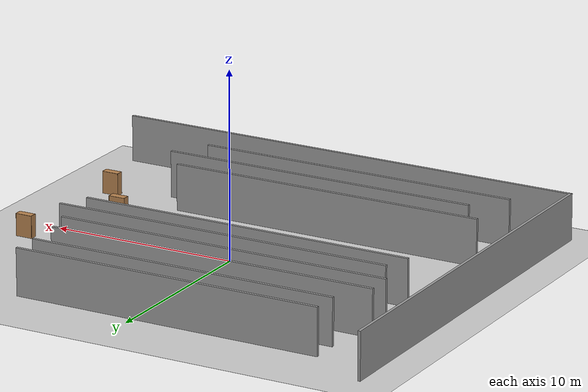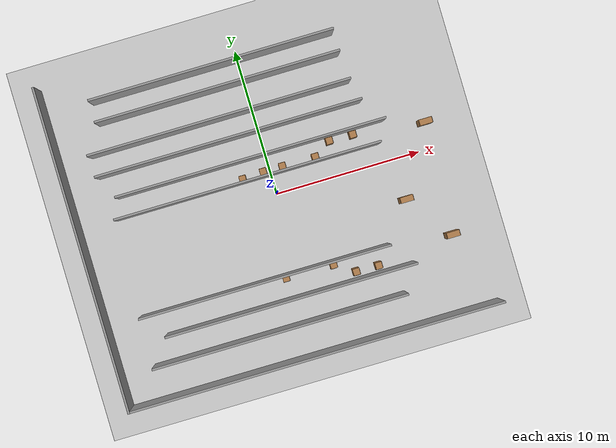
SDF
<sdf version="1.6">
 <world name="default">
  <model name="ground_plane">
   <static>1</static>
   <link name="link">
    <collision name="collision">
     <geometry><plane><normal>0 0 1</normal><size>100 100</size></plane></geometry>
     <surface><friction><ode><mu>100</mu><mu2>50</mu2></ode></friction></surface>
    </collision>
    <visual name="visual">
     <cast_shadows>0</cast_shadows>
     <geometry><plane><normal>0 0 1</normal><size>100 100</size></plane></geometry>
     <material>
      <script><uri>file://media/materials/scripts/gazebo.material</uri><name>Gazebo/Grey</name></script>
     </material>
    </visual>
   </link>
  </model>
  <model name="room19">
   <pose>-0.568895 0.02138 0 0 -0 0</pose>
   <link name="Wall_11">
    <collision name="Wall_11_Collision">
     <geometry><box><size>18.25 0.15 2.5</size></box></geometry>
     <pose>0 0 1.25 0 -0 0</pose>
    </collision>
    <visual name="Wall_11_Visual">
     <pose>0 0 1.25 0 -0 0</pose>
     <geometry><box><size>18.25 0.15 2.5</size></box></geometry>
     <material>
      <script><uri>file://media/materials/scripts/gazebo.material</uri><name>Gazebo/Grey</name></script>
      <ambient>1 1 1 1</ambient>
     </material>
     <meta><layer>0</layer></meta>
    </visual>
    <pose>-1.4753 4.35815 0 0 -0 0</pose>
   </link>
   <link name="Wall_13">
    <collision name="Wall_13_Collision">
     <geometry><box><size>18.5 0.15 2.5</size></box></geometry>
     <pose>0 0 1.25 0 -0 0</pose>
    </collision>
    <visual name="Wall_13_Visual">
     <pose>0 0 1.25 0 -0 0</pose>
     <geometry><box><size>18.5 0.15 2.5</size></box></geometry>
     <material>
      <script><uri>file://media/materials/scripts/gazebo.material</uri><name>Gazebo/Grey</name></script>
      <ambient>1 1 1 1</ambient>
     </material>
     <meta><layer>0</layer></meta>
    </visual>
    <pose>-0.450999 2.71825 0 0 -0 0</pose>
   </link>
   <link name="Wall_15">
    <collision name="Wall_15_Collision">
     <geometry><box><size>18.25 0.15 2.5</size></box></geometry>
     <pose>0 0 1.25 0 -0 0</pose>
    </collision>
    <visual name="Wall_15_Visual">
     <pose>0 0 1.25 0 -0 0</pose>
     <geometry><box><size>18.25 0.15 2.5</size></box></geometry>
     <material>
      <script><uri>file://media/materials/scripts/gazebo.material</uri><name>Gazebo/Grey</name></script>
      <ambient>1 1 1 1</ambient>
     </material>
     <meta><layer>0</layer></meta>
    </visual>
    <pose>-1.0521 1.3164 0 0 -0 0</pose>
   </link>
   <link name="Wall_18">
    <collision name="Wall_18_Collision">
     <geometry><box><size>17.5 0.15 2.5</size></box></geometry>
     <pose>0 0 1.25 0 -0 0</pose>
    </collision>
    <visual name="Wall_18_Visual">
     <pose>0 0 1.25 0 -0 0</pose>
     <geometry><box><size>17.5 0.15 2.5</size></box></geometry>
     <material>
      <script><uri>file://media/materials/scripts/gazebo.material</uri><name>Gazebo/Grey</name></script>
      <ambient>1 1 1 1</ambient>
     </material>
     <meta><layer>0</layer></meta>
    </visual>
    <pose>-1.7974 -8.7875 0 0 -0 0</pose>
   </link>
   <link name="Wall_2">
    <collision name="Wall_2_Collision">
     <geometry><box><size>22.25 0.15 2.5</size></box></geometry>
     <pose>0 0 1.25 0 -0 0</pose>
    </collision>
    <visual name="Wall_2_Visual">
     <pose>0 0 1.25 0 -0 0</pose>
     <geometry><box><size>22.25 0.15 2.5</size></box></geometry>
     <material>
      <script><uri>file://media/materials/scripts/gazebo.material</uri><name>Gazebo/Grey</name></script>
      <ambient>1 1 1 1</ambient>
     </material>
     <meta><layer>0</layer></meta>
    </visual>
    <pose>-12.8 -0 0 0 -0 -1.5708</pose>
   </link>
   <link name="Wall_21">
    <collision name="Wall_21_Collision">
     <geometry><box><size>17.25 0.15 2.5</size></box></geometry>
     <pose>0 0 1.25 0 -0 0</pose>
    </collision>
    <visual name="Wall_21_Visual">
     <pose>0 0 1.25 0 -0 0</pose>
     <geometry><box><size>17.25 0.15 2.5</size></box></geometry>
     <material>
      <script><uri>file://media/materials/scripts/gazebo.material</uri><name>Gazebo/Grey</name></script>
      <ambient>1 1 1 1</ambient>
     </material>
     <meta><layer>0</layer></meta>
    </visual>
    <pose>-0.520549 -7.01535 0 0 -0 0</pose>
   </link>
   <link name="Wall_23">
    <collision name="Wall_23_Collision">
     <geometry><box><size>17.25 0.15 2.5</size></box></geometry>
     <pose>0 0 1.25 0 -0 0</pose>
    </collision>
    <visual name="Wall_23_Visual">
     <pose>0 0 1.25 0 -0 0</pose>
     <geometry><box><size>17.25 0.15 2.5</size></box></geometry>
     <material>
      <script><uri>file://media/materials/scripts/gazebo.material</uri><name>Gazebo/Grey</name></script>
      <ambient>1 1 1 1</ambient>
     </material>
     <meta><layer>0</layer></meta>
    </visual>
    <pose>-1.84305 -5.37545 0 0 -0 0</pose>
   </link>
   <link name="Wall_3">
    <collision name="Wall_3_Collision">
     <geometry><box><size>25.75 0.15 2.5</size></box></geometry>
     <pose>0 0 1.25 0 -0 0</pose>
    </collision>
    <visual name="Wall_3_Visual">
     <pose>0 0 1.25 0 -0 0</pose>
     <geometry><box><size>25.75 0.15 2.5</size></box></geometry>
     <material>
      <script><uri>file://media/materials/scripts/gazebo.material</uri><name>Gazebo/Grey</name></script>
      <ambient>1 1 1 1</ambient>
     </material>
     <meta><layer>0</layer></meta>
    </visual>
    <pose>1e-06 -11.05 0 0 -0 0</pose>
   </link>
   <link name="Wall_5">
    <collision name="Wall_5_Collision">
     <geometry><box><size>16.75 0.15 2.5</size></box></geometry>
     <pose>0 0 1.25 0 -0 0</pose>
    </collision>
    <visual name="Wall_5_Visual">
     <pose>0 0 1.25 0 -0 0</pose>
     <geometry><box><size>16.75 0.15 2.5</size></box></geometry>
     <material>
      <script><uri>file://media/materials/scripts/gazebo.material</uri><name>Gazebo/Grey</name></script>
      <ambient>1 1 1 1</ambient>
     </material>
     <meta><layer>0</layer></meta>
    </visual>
    <pose>-1.2202 9.27785 0 0 -0 0</pose>
   </link>
   <link name="Wall_7">
    <collision name="Wall_7_Collision">
     <geometry><box><size>16.75 0.15 2.5</size></box></geometry>
     <pose>0 0 1.25 0 -0 0</pose>
    </collision>
    <visual name="Wall_7_Visual">
     <pose>0 0 1.25 0 -0 0</pose>
     <geometry><box><size>16.75 0.15 2.5</size></box></geometry>
     <material>
      <script><uri>file://media/materials/scripts/gazebo.material</uri><name>Gazebo/Grey</name></script>
      <ambient>1 1 1 1</ambient>
     </material>
     <meta><layer>0</layer></meta>
    </visual>
    <pose>-1.2202 7.79665 0 0 -0 0</pose>
   </link>
   <link name="Wall_9">
    <collision name="Wall_9_Collision">
     <geometry><box><size>18 0.15 2.5</size></box></geometry>
     <pose>0 0 1.25 0 -0 0</pose>
    </collision>
    <visual name="Wall_9_Visual">
     <pose>0 0 1.25 0 -0 0</pose>
     <geometry><box><size>18 0.15 2.5</size></box></geometry>
     <material>
      <script><uri>file://media/materials/scripts/gazebo.material</uri><name>Gazebo/Grey</name></script>
      <ambient>1 1 1 1</ambient>
     </material>
     <meta><layer>0</layer></meta>
    </visual>
    <pose>-1.67965 5.83935 0 0 -0 0</pose>
   </link>
   <static>1</static>
  </model>
  <model name="cabinet_28">
   <static>1</static>
   <link name="cabinet_bottom_plate">
    <inertial>
     <pose>0 0 -1 0 -0 0</pose>
     <inertia><ixx>2.05</ixx><ixy>0</ixy><ixz>0</ixz><iyy>2.05</iyy><iyz>0</iyz><izz>2.05</izz></inertia>
     <mass>25</mass>
    </inertial>
    <collision name="cabinet_bottom_plate_geom">
     <pose>0 0 0.01 0 -0 0</pose>
     <geometry><box><size>0.45 0.45 0.02</size></box></geometry>
    </collision>
    <visual name="cabinet_bottom_plate_geom_visual">
     <pose>0 0 0.01 0 -0 0</pose>
     <geometry><box><size>0.45 0.45 0.02</size></box></geometry>
     <material>
      <script><uri>file://media/materials/scripts/gazebo.material</uri><name>Gazebo/Wood</name></script>
     </material>
    </visual>
    <collision name="cabinet_bottom_plate_geom_cabinet_back_plate">
     <pose>0.235 0 0.51 0 -0 0</pose>
     <geometry><box><size>0.02 0.45 1.02</size></box></geometry>
    </collision>
    <visual name="cabinet_bottom_plate_geom_cabinet_back_plate_visual">
     <pose>0.235 0 0.51 0 -0 0</pose>
     <geometry><box><size>0.02 0.45 1.02</size></box></geometry>
     <material>
      <script><uri>file://media/materials/scripts/gazebo.material</uri><name>Gazebo/Wood</name></script>
     </material>
    </visual>
    <collision name="cabinet_bottom_plate_geom_cabinet_left_plate">
     <pose>0 0.235 0.51 0 -0 0</pose>
     <geometry><box><size>0.45 0.02 1.02</size></box></geometry>
    </collision>
    <visual name="cabinet_bottom_plate_geom_cabinet_left_plate_visual">
     <pose>0 0.235 0.51 0 -0 0</pose>
     <geometry><box><size>0.45 0.02 1.02</size></box></geometry>
     <material>
      <script><uri>file://media/materials/scripts/gazebo.material</uri><name>Gazebo/Wood</name></script>
     </material>
    </visual>
    <collision name="cabinet_bottom_plate_geom_cabinet_middle_plate">
     <pose>0 0 0.51 0 -0 0</pose>
     <geometry><box><size>0.45 0.45 0.02</size></box></geometry>
    </collision>
    <visual name="cabinet_bottom_plate_geom_cabinet_middle_plate_visual">
     <pose>0 0 0.51 0 -0 0</pose>
     <geometry><box><size>0.45 0.45 0.02</size></box></geometry>
     <material>
      <script><uri>file://media/materials/scripts/gazebo.material</uri><name>Gazebo/Wood</name></script>
     </material>
    </visual>
    <collision name="cabinet_bottom_plate_geom_cabinet_right_plate">
     <pose>0 -0.235 0.51 0 -0 0</pose>
     <geometry><box><size>0.45 0.02 1.02</size></box></geometry>
    </collision>
    <visual name="cabinet_bottom_plate_geom_cabinet_right_plate_visual">
     <pose>0 -0.235 0.51 0 -0 0</pose>
     <geometry><box><size>0.45 0.02 1.02</size></box></geometry>
     <material>
      <script><uri>file://media/materials/scripts/gazebo.material</uri><name>Gazebo/Wood</name></script>
     </material>
    </visual>
    <collision name="cabinet_bottom_plate_geom_cabinet_top_plate">
     <pose>0 0 1.01 0 -0 0</pose>
     <geometry><box><size>0.45 0.45 0.02</size></box></geometry>
    </collision>
    <visual name="cabinet_bottom_plate_geom_cabinet_top_plate_visual">
     <pose>0 0 1.01 0 -0 0</pose>
     <geometry><box><size>0.45 0.45 0.02</size></box></geometry>
     <material>
      <script><uri>file://media/materials/scripts/gazebo.material</uri><name>Gazebo/Wood</name></script>
     </material>
    </visual>
   </link>
   <pose>-1.01228 -5.58663 0 0 -0 0</pose>
  </model>
  <model name="cabinet_31">
   <static>1</static>
   <link name="cabinet_bottom_plate">
    <inertial>
     <pose>0 0 -1 0 -0 0</pose>
     <inertia><ixx>2.05</ixx><ixy>0</ixy><ixz>0</ixz><iyy>2.05</iyy><iyz>0</iyz><izz>2.05</izz></inertia>
     <mass>25</mass>
    </inertial>
    <collision name="cabinet_bottom_plate_geom">
     <pose>0 0 0.01 0 -0 0</pose>
     <geometry><box><size>0.45 0.45 0.02</size></box></geometry>
    </collision>
    <visual name="cabinet_bottom_plate_geom_visual">
     <pose>0 0 0.01 0 -0 0</pose>
     <geometry><box><size>0.45 0.45 0.02</size></box></geometry>
     <material>
      <script><uri>file://media/materials/scripts/gazebo.material</uri><name>Gazebo/Wood</name></script>
     </material>
    </visual>
    <collision name="cabinet_bottom_plate_geom_cabinet_back_plate">
     <pose>0.235 0 0.51 0 -0 0</pose>
     <geometry><box><size>0.02 0.45 1.02</size></box></geometry>
    </collision>
    <visual name="cabinet_bottom_plate_geom_cabinet_back_plate_visual">
     <pose>0.235 0 0.51 0 -0 0</pose>
     <geometry><box><size>0.02 0.45 1.02</size></box></geometry>
     <material>
      <script><uri>file://media/materials/scripts/gazebo.material</uri><name>Gazebo/Wood</name></script>
     </material>
    </visual>
    <collision name="cabinet_bottom_plate_geom_cabinet_left_plate">
     <pose>0 0.235 0.51 0 -0 0</pose>
     <geometry><box><size>0.45 0.02 1.02</size></box></geometry>
    </collision>
    <visual name="cabinet_bottom_plate_geom_cabinet_left_plate_visual">
     <pose>0 0.235 0.51 0 -0 0</pose>
     <geometry><box><size>0.45 0.02 1.02</size></box></geometry>
     <material>
      <script><uri>file://media/materials/scripts/gazebo.material</uri><name>Gazebo/Wood</name></script>
     </material>
    </visual>
    <collision name="cabinet_bottom_plate_geom_cabinet_middle_plate">
     <pose>0 0 0.51 0 -0 0</pose>
     <geometry><box><size>0.45 0.45 0.02</size></box></geometry>
    </collision>
    <visual name="cabinet_bottom_plate_geom_cabinet_middle_plate_visual">
     <pose>0 0 0.51 0 -0 0</pose>
     <geometry><box><size>0.45 0.45 0.02</size></box></geometry>
     <material>
      <script><uri>file://media/materials/scripts/gazebo.material</uri><name>Gazebo/Wood</name></script>
     </material>
    </visual>
    <collision name="cabinet_bottom_plate_geom_cabinet_right_plate">
     <pose>0 -0.235 0.51 0 -0 0</pose>
     <geometry><box><size>0.45 0.02 1.02</size></box></geometry>
    </collision>
    <visual name="cabinet_bottom_plate_geom_cabinet_right_plate_visual">
     <pose>0 -0.235 0.51 0 -0 0</pose>
     <geometry><box><size>0.45 0.02 1.02</size></box></geometry>
     <material>
      <script><uri>file://media/materials/scripts/gazebo.material</uri><name>Gazebo/Wood</name></script>
     </material>
    </visual>
    <collision name="cabinet_bottom_plate_geom_cabinet_top_plate">
     <pose>0 0 1.01 0 -0 0</pose>
     <geometry><box><size>0.45 0.45 0.02</size></box></geometry>
    </collision>
    <visual name="cabinet_bottom_plate_geom_cabinet_top_plate_visual">
     <pose>0 0 1.01 0 -0 0</pose>
     <geometry><box><size>0.45 0.45 0.02</size></box></geometry>
     <material>
      <script><uri>file://media/materials/scripts/gazebo.material</uri><name>Gazebo/Wood</name></script>
     </material>
    </visual>
   </link>
   <pose>2.27337 -5.63506 0 0 -0 0</pose>
  </model>
  <model name="cabinet_32">
   <static>1</static>
   <link name="cabinet_bottom_plate">
    <inertial>
     <pose>0 0 -1 0 -0 0</pose>
     <inertia><ixx>2.05</ixx><ixy>0</ixy><ixz>0</ixz><iyy>2.05</iyy><iyz>0</iyz><izz>2.05</izz></inertia>
     <mass>25</mass>
    </inertial>
    <collision name="cabinet_bottom_plate_geom">
     <pose>0 0 0.01 0 -0 0</pose>
     <geometry><box><size>0.45 0.45 0.02</size></box></geometry>
    </collision>
    <visual name="cabinet_bottom_plate_geom_visual">
     <pose>0 0 0.01 0 -0 0</pose>
     <geometry><box><size>0.45 0.45 0.02</size></box></geometry>
     <material>
      <script><uri>file://media/materials/scripts/gazebo.material</uri><name>Gazebo/Wood</name></script>
     </material>
    </visual>
    <collision name="cabinet_bottom_plate_geom_cabinet_back_plate">
     <pose>0.235 0 0.51 0 -0 0</pose>
     <geometry><box><size>0.02 0.45 1.02</size></box></geometry>
    </collision>
    <visual name="cabinet_bottom_plate_geom_cabinet_back_plate_visual">
     <pose>0.235 0 0.51 0 -0 0</pose>
     <geometry><box><size>0.02 0.45 1.02</size></box></geometry>
     <material>
      <script><uri>file://media/materials/scripts/gazebo.material</uri><name>Gazebo/Wood</name></script>
     </material>
    </visual>
    <collision name="cabinet_bottom_plate_geom_cabinet_left_plate">
     <pose>0 0.235 0.51 0 -0 0</pose>
     <geometry><box><size>0.45 0.02 1.02</size></box></geometry>
    </collision>
    <visual name="cabinet_bottom_plate_geom_cabinet_left_plate_visual">
     <pose>0 0.235 0.51 0 -0 0</pose>
     <geometry><box><size>0.45 0.02 1.02</size></box></geometry>
     <material>
      <script><uri>file://media/materials/scripts/gazebo.material</uri><name>Gazebo/Wood</name></script>
     </material>
    </visual>
    <collision name="cabinet_bottom_plate_geom_cabinet_middle_plate">
     <pose>0 0 0.51 0 -0 0</pose>
     <geometry><box><size>0.45 0.45 0.02</size></box></geometry>
    </collision>
    <visual name="cabinet_bottom_plate_geom_cabinet_middle_plate_visual">
     <pose>0 0 0.51 0 -0 0</pose>
     <geometry><box><size>0.45 0.45 0.02</size></box></geometry>
     <material>
      <script><uri>file://media/materials/scripts/gazebo.material</uri><name>Gazebo/Wood</name></script>
     </material>
    </visual>
    <collision name="cabinet_bottom_plate_geom_cabinet_right_plate">
     <pose>0 -0.235 0.51 0 -0 0</pose>
     <geometry><box><size>0.45 0.02 1.02</size></box></geometry>
    </collision>
    <visual name="cabinet_bottom_plate_geom_cabinet_right_plate_visual">
     <pose>0 -0.235 0.51 0 -0 0</pose>
     <geometry><box><size>0.45 0.02 1.02</size></box></geometry>
     <material>
      <script><uri>file://media/materials/scripts/gazebo.material</uri><name>Gazebo/Wood</name></script>
     </material>
    </visual>
    <collision name="cabinet_bottom_plate_geom_cabinet_top_plate">
     <pose>0 0 1.01 0 -0 0</pose>
     <geometry><box><size>0.45 0.45 0.02</size></box></geometry>
    </collision>
    <visual name="cabinet_bottom_plate_geom_cabinet_top_plate_visual">
     <pose>0 0 1.01 0 -0 0</pose>
     <geometry><box><size>0.45 0.45 0.02</size></box></geometry>
     <material>
      <script><uri>file://media/materials/scripts/gazebo.material</uri><name>Gazebo/Wood</name></script>
     </material>
    </visual>
   </link>
   <pose>3.61342 -6.50325 0 0 -0 0</pose>
  </model>
  <model name="cabinet_33">
   <static>1</static>
   <link name="cabinet_bottom_plate">
    <inertial>
     <pose>0 0 -1 0 -0 0</pose>
     <inertia><ixx>2.05</ixx><ixy>0</ixy><ixz>0</ixz><iyy>2.05</iyy><iyz>0</iyz><izz>2.05</izz></inertia>
     <mass>25</mass>
    </inertial>
    <collision name="cabinet_bottom_plate_geom">
     <pose>0 0 0.01 0 -0 0</pose>
     <geometry><box><size>0.45 0.45 0.02</size></box></geometry>
    </collision>
    <visual name="cabinet_bottom_plate_geom_visual">
     <pose>0 0 0.01 0 -0 0</pose>
     <geometry><box><size>0.45 0.45 0.02</size></box></geometry>
     <material>
      <script><uri>file://media/materials/scripts/gazebo.material</uri><name>Gazebo/Wood</name></script>
     </material>
    </visual>
    <collision name="cabinet_bottom_plate_geom_cabinet_back_plate">
     <pose>0.235 0 0.51 0 -0 0</pose>
     <geometry><box><size>0.02 0.45 1.02</size></box></geometry>
    </collision>
    <visual name="cabinet_bottom_plate_geom_cabinet_back_plate_visual">
     <pose>0.235 0 0.51 0 -0 0</pose>
     <geometry><box><size>0.02 0.45 1.02</size></box></geometry>
     <material>
      <script><uri>file://media/materials/scripts/gazebo.material</uri><name>Gazebo/Wood</name></script>
     </material>
    </visual>
    <collision name="cabinet_bottom_plate_geom_cabinet_left_plate">
     <pose>0 0.235 0.51 0 -0 0</pose>
     <geometry><box><size>0.45 0.02 1.02</size></box></geometry>
    </collision>
    <visual name="cabinet_bottom_plate_geom_cabinet_left_plate_visual">
     <pose>0 0.235 0.51 0 -0 0</pose>
     <geometry><box><size>0.45 0.02 1.02</size></box></geometry>
     <material>
      <script><uri>file://media/materials/scripts/gazebo.material</uri><name>Gazebo/Wood</name></script>
     </material>
    </visual>
    <collision name="cabinet_bottom_plate_geom_cabinet_middle_plate">
     <pose>0 0 0.51 0 -0 0</pose>
     <geometry><box><size>0.45 0.45 0.02</size></box></geometry>
    </collision>
    <visual name="cabinet_bottom_plate_geom_cabinet_middle_plate_visual">
     <pose>0 0 0.51 0 -0 0</pose>
     <geometry><box><size>0.45 0.45 0.02</size></box></geometry>
     <material>
      <script><uri>file://media/materials/scripts/gazebo.material</uri><name>Gazebo/Wood</name></script>
     </material>
    </visual>
    <collision name="cabinet_bottom_plate_geom_cabinet_right_plate">
     <pose>0 -0.235 0.51 0 -0 0</pose>
     <geometry><box><size>0.45 0.02 1.02</size></box></geometry>
    </collision>
    <visual name="cabinet_bottom_plate_geom_cabinet_right_plate_visual">
     <pose>0 -0.235 0.51 0 -0 0</pose>
     <geometry><box><size>0.45 0.02 1.02</size></box></geometry>
     <material>
      <script><uri>file://media/materials/scripts/gazebo.material</uri><name>Gazebo/Wood</name></script>
     </material>
    </visual>
    <collision name="cabinet_bottom_plate_geom_cabinet_top_plate">
     <pose>0 0 1.01 0 -0 0</pose>
     <geometry><box><size>0.45 0.45 0.02</size></box></geometry>
    </collision>
    <visual name="cabinet_bottom_plate_geom_cabinet_top_plate_visual">
     <pose>0 0 1.01 0 -0 0</pose>
     <geometry><box><size>0.45 0.45 0.02</size></box></geometry>
     <material>
      <script><uri>file://media/materials/scripts/gazebo.material</uri><name>Gazebo/Wood</name></script>
     </material>
    </visual>
   </link>
   <pose>5.16024 -6.52661 0 0 -0 0</pose>
  </model>
  <model name="cabinet_90">
   <static>1</static>
   <link name="cabinet_bottom_plate">
    <inertial>
     <pose>0 0 -1 0 -0 0</pose>
     <inertia><ixx>2.05</ixx><ixy>0</ixy><ixz>0</ixz><iyy>2.05</iyy><iyz>0</iyz><izz>2.05</izz></inertia>
     <mass>25</mass>
    </inertial>
    <collision name="cabinet_bottom_plate_geom">
     <pose>0 0 0.01 0 -0 0</pose>
     <geometry><box><size>0.45 0.45 0.02</size></box></geometry>
    </collision>
    <visual name="cabinet_bottom_plate_geom_visual">
     <pose>0 0 0.01 0 -0 0</pose>
     <geometry><box><size>0.45 0.45 0.02</size></box></geometry>
     <material>
      <script><uri>file://media/materials/scripts/gazebo.material</uri><name>Gazebo/Wood</name></script>
     </material>
    </visual>
    <collision name="cabinet_bottom_plate_geom_cabinet_back_plate">
     <pose>0.235 0 0.51 0 -0 0</pose>
     <geometry><box><size>0.02 0.45 1.02</size></box></geometry>
    </collision>
    <visual name="cabinet_bottom_plate_geom_cabinet_back_plate_visual">
     <pose>0.235 0 0.51 0 -0 0</pose>
     <geometry><box><size>0.02 0.45 1.02</size></box></geometry>
     <material>
      <script><uri>file://media/materials/scripts/gazebo.material</uri><name>Gazebo/Wood</name></script>
     </material>
    </visual>
    <collision name="cabinet_bottom_plate_geom_cabinet_left_plate">
     <pose>0 0.235 0.51 0 -0 0</pose>
     <geometry><box><size>0.45 0.02 1.02</size></box></geometry>
    </collision>
    <visual name="cabinet_bottom_plate_geom_cabinet_left_plate_visual">
     <pose>0 0.235 0.51 0 -0 0</pose>
     <geometry><box><size>0.45 0.02 1.02</size></box></geometry>
     <material>
      <script><uri>file://media/materials/scripts/gazebo.material</uri><name>Gazebo/Wood</name></script>
     </material>
    </visual>
    <collision name="cabinet_bottom_plate_geom_cabinet_middle_plate">
     <pose>0 0 0.51 0 -0 0</pose>
     <geometry><box><size>0.45 0.45 0.02</size></box></geometry>
    </collision>
    <visual name="cabinet_bottom_plate_geom_cabinet_middle_plate_visual">
     <pose>0 0 0.51 0 -0 0</pose>
     <geometry><box><size>0.45 0.45 0.02</size></box></geometry>
     <material>
      <script><uri>file://media/materials/scripts/gazebo.material</uri><name>Gazebo/Wood</name></script>
     </material>
    </visual>
    <collision name="cabinet_bottom_plate_geom_cabinet_right_plate">
     <pose>0 -0.235 0.51 0 -0 0</pose>
     <geometry><box><size>0.45 0.02 1.02</size></box></geometry>
    </collision>
    <visual name="cabinet_bottom_plate_geom_cabinet_right_plate_visual">
     <pose>0 -0.235 0.51 0 -0 0</pose>
     <geometry><box><size>0.45 0.02 1.02</size></box></geometry>
     <material>
      <script><uri>file://media/materials/scripts/gazebo.material</uri><name>Gazebo/Wood</name></script>
     </material>
    </visual>
    <collision name="cabinet_bottom_plate_geom_cabinet_top_plate">
     <pose>0 0 1.01 0 -0 0</pose>
     <geometry><box><size>0.45 0.45 0.02</size></box></geometry>
    </collision>
    <visual name="cabinet_bottom_plate_geom_cabinet_top_plate_visual">
     <pose>0 0 1.01 0 -0 0</pose>
     <geometry><box><size>0.45 0.45 0.02</size></box></geometry>
     <material>
      <script><uri>file://media/materials/scripts/gazebo.material</uri><name>Gazebo/Wood</name></script>
     </material>
    </visual>
   </link>
   <pose>-1.9232 1.57761 0 0 -0 0</pose>
  </model>
  <model name="cabinet_91">
   <static>1</static>
   <link name="cabinet_bottom_plate">
    <inertial>
     <pose>0 0 -1 0 -0 0</pose>
     <inertia><ixx>2.05</ixx><ixy>0</ixy><ixz>0</ixz><iyy>2.05</iyy><iyz>0</iyz><izz>2.05</izz></inertia>
     <mass>25</mass>
    </inertial>
    <collision name="cabinet_bottom_plate_geom">
     <pose>0 0 0.01 0 -0 0</pose>
     <geometry><box><size>0.45 0.45 0.02</size></box></geometry>
    </collision>
    <visual name="cabinet_bottom_plate_geom_visual">
     <pose>0 0 0.01 0 -0 0</pose>
     <geometry><box><size>0.45 0.45 0.02</size></box></geometry>
     <material>
      <script><uri>file://media/materials/scripts/gazebo.material</uri><name>Gazebo/Wood</name></script>
     </material>
    </visual>
    <collision name="cabinet_bottom_plate_geom_cabinet_back_plate">
     <pose>0.235 0 0.51 0 -0 0</pose>
     <geometry><box><size>0.02 0.45 1.02</size></box></geometry>
    </collision>
    <visual name="cabinet_bottom_plate_geom_cabinet_back_plate_visual">
     <pose>0.235 0 0.51 0 -0 0</pose>
     <geometry><box><size>0.02 0.45 1.02</size></box></geometry>
     <material>
      <script><uri>file://media/materials/scripts/gazebo.material</uri><name>Gazebo/Wood</name></script>
     </material>
    </visual>
    <collision name="cabinet_bottom_plate_geom_cabinet_left_plate">
     <pose>0 0.235 0.51 0 -0 0</pose>
     <geometry><box><size>0.45 0.02 1.02</size></box></geometry>
    </collision>
    <visual name="cabinet_bottom_plate_geom_cabinet_left_plate_visual">
     <pose>0 0.235 0.51 0 -0 0</pose>
     <geometry><box><size>0.45 0.02 1.02</size></box></geometry>
     <material>
      <script><uri>file://media/materials/scripts/gazebo.material</uri><name>Gazebo/Wood</name></script>
     </material>
    </visual>
    <collision name="cabinet_bottom_plate_geom_cabinet_middle_plate">
     <pose>0 0 0.51 0 -0 0</pose>
     <geometry><box><size>0.45 0.45 0.02</size></box></geometry>
    </collision>
    <visual name="cabinet_bottom_plate_geom_cabinet_middle_plate_visual">
     <pose>0 0 0.51 0 -0 0</pose>
     <geometry><box><size>0.45 0.45 0.02</size></box></geometry>
     <material>
      <script><uri>file://media/materials/scripts/gazebo.material</uri><name>Gazebo/Wood</name></script>
     </material>
    </visual>
    <collision name="cabinet_bottom_plate_geom_cabinet_right_plate">
     <pose>0 -0.235 0.51 0 -0 0</pose>
     <geometry><box><size>0.45 0.02 1.02</size></box></geometry>
    </collision>
    <visual name="cabinet_bottom_plate_geom_cabinet_right_plate_visual">
     <pose>0 -0.235 0.51 0 -0 0</pose>
     <geometry><box><size>0.45 0.02 1.02</size></box></geometry>
     <material>
      <script><uri>file://media/materials/scripts/gazebo.material</uri><name>Gazebo/Wood</name></script>
     </material>
    </visual>
    <collision name="cabinet_bottom_plate_geom_cabinet_top_plate">
     <pose>0 0 1.01 0 -0 0</pose>
     <geometry><box><size>0.45 0.45 0.02</size></box></geometry>
    </collision>
    <visual name="cabinet_bottom_plate_geom_cabinet_top_plate_visual">
     <pose>0 0 1.01 0 -0 0</pose>
     <geometry><box><size>0.45 0.45 0.02</size></box></geometry>
     <material>
      <script><uri>file://media/materials/scripts/gazebo.material</uri><name>Gazebo/Wood</name></script>
     </material>
    </visual>
   </link>
   <pose>-0.475431 1.66712 0 0 -0 0</pose>
  </model>
  <model name="cabinet_92">
   <static>1</static>
   <link name="cabinet_bottom_plate">
    <inertial>
     <pose>0 0 -1 0 -0 0</pose>
     <inertia><ixx>2.05</ixx><ixy>0</ixy><ixz>0</ixz><iyy>2.05</iyy><iyz>0</iyz><izz>2.05</izz></inertia>
     <mass>25</mass>
    </inertial>
    <collision name="cabinet_bottom_plate_geom">
     <pose>0 0 0.01 0 -0 0</pose>
     <geometry><box><size>0.45 0.45 0.02</size></box></geometry>
    </collision>
    <visual name="cabinet_bottom_plate_geom_visual">
     <pose>0 0 0.01 0 -0 0</pose>
     <geometry><box><size>0.45 0.45 0.02</size></box></geometry>
     <material>
      <script><uri>file://media/materials/scripts/gazebo.material</uri><name>Gazebo/Wood</name></script>
     </material>
    </visual>
    <collision name="cabinet_bottom_plate_geom_cabinet_back_plate">
     <pose>0.235 0 0.51 0 -0 0</pose>
     <geometry><box><size>0.02 0.45 1.02</size></box></geometry>
    </collision>
    <visual name="cabinet_bottom_plate_geom_cabinet_back_plate_visual">
     <pose>0.235 0 0.51 0 -0 0</pose>
     <geometry><box><size>0.02 0.45 1.02</size></box></geometry>
     <material>
      <script><uri>file://media/materials/scripts/gazebo.material</uri><name>Gazebo/Wood</name></script>
     </material>
    </visual>
    <collision name="cabinet_bottom_plate_geom_cabinet_left_plate">
     <pose>0 0.235 0.51 0 -0 0</pose>
     <geometry><box><size>0.45 0.02 1.02</size></box></geometry>
    </collision>
    <visual name="cabinet_bottom_plate_geom_cabinet_left_plate_visual">
     <pose>0 0.235 0.51 0 -0 0</pose>
     <geometry><box><size>0.45 0.02 1.02</size></box></geometry>
     <material>
      <script><uri>file://media/materials/scripts/gazebo.material</uri><name>Gazebo/Wood</name></script>
     </material>
    </visual>
    <collision name="cabinet_bottom_plate_geom_cabinet_middle_plate">
     <pose>0 0 0.51 0 -0 0</pose>
     <geometry><box><size>0.45 0.45 0.02</size></box></geometry>
    </collision>
    <visual name="cabinet_bottom_plate_geom_cabinet_middle_plate_visual">
     <pose>0 0 0.51 0 -0 0</pose>
     <geometry><box><size>0.45 0.45 0.02</size></box></geometry>
     <material>
      <script><uri>file://media/materials/scripts/gazebo.material</uri><name>Gazebo/Wood</name></script>
     </material>
    </visual>
    <collision name="cabinet_bottom_plate_geom_cabinet_right_plate">
     <pose>0 -0.235 0.51 0 -0 0</pose>
     <geometry><box><size>0.45 0.02 1.02</size></box></geometry>
    </collision>
    <visual name="cabinet_bottom_plate_geom_cabinet_right_plate_visual">
     <pose>0 -0.235 0.51 0 -0 0</pose>
     <geometry><box><size>0.45 0.02 1.02</size></box></geometry>
     <material>
      <script><uri>file://media/materials/scripts/gazebo.material</uri><name>Gazebo/Wood</name></script>
     </material>
    </visual>
    <collision name="cabinet_bottom_plate_geom_cabinet_top_plate">
     <pose>0 0 1.01 0 -0 0</pose>
     <geometry><box><size>0.45 0.45 0.02</size></box></geometry>
    </collision>
    <visual name="cabinet_bottom_plate_geom_cabinet_top_plate_visual">
     <pose>0 0 1.01 0 -0 0</pose>
     <geometry><box><size>0.45 0.45 0.02</size></box></geometry>
     <material>
      <script><uri>file://media/materials/scripts/gazebo.material</uri><name>Gazebo/Wood</name></script>
     </material>
    </visual>
   </link>
   <pose>0.860363 1.65972 0 0 -0 0</pose>
  </model>
  <model name="cabinet_94">
   <static>1</static>
   <link name="cabinet_bottom_plate">
    <inertial>
     <pose>0 0 -1 0 -0 0</pose>
     <inertia><ixx>2.05</ixx><ixy>0</ixy><ixz>0</ixz><iyy>2.05</iyy><iyz>0</iyz><izz>2.05</izz></inertia>
     <mass>25</mass>
    </inertial>
    <collision name="cabinet_bottom_plate_geom">
     <pose>0 0 0.01 0 -0 0</pose>
     <geometry><box><size>0.45 0.45 0.02</size></box></geometry>
    </collision>
    <visual name="cabinet_bottom_plate_geom_visual">
     <pose>0 0 0.01 0 -0 0</pose>
     <geometry><box><size>0.45 0.45 0.02</size></box></geometry>
     <material>
      <script><uri>file://media/materials/scripts/gazebo.material</uri><name>Gazebo/Wood</name></script>
     </material>
    </visual>
    <collision name="cabinet_bottom_plate_geom_cabinet_back_plate">
     <pose>0.235 0 0.51 0 -0 0</pose>
     <geometry><box><size>0.02 0.45 1.02</size></box></geometry>
    </collision>
    <visual name="cabinet_bottom_plate_geom_cabinet_back_plate_visual">
     <pose>0.235 0 0.51 0 -0 0</pose>
     <geometry><box><size>0.02 0.45 1.02</size></box></geometry>
     <material>
      <script><uri>file://media/materials/scripts/gazebo.material</uri><name>Gazebo/Wood</name></script>
     </material>
    </visual>
    <collision name="cabinet_bottom_plate_geom_cabinet_left_plate">
     <pose>0 0.235 0.51 0 -0 0</pose>
     <geometry><box><size>0.45 0.02 1.02</size></box></geometry>
    </collision>
    <visual name="cabinet_bottom_plate_geom_cabinet_left_plate_visual">
     <pose>0 0.235 0.51 0 -0 0</pose>
     <geometry><box><size>0.45 0.02 1.02</size></box></geometry>
     <material>
      <script><uri>file://media/materials/scripts/gazebo.material</uri><name>Gazebo/Wood</name></script>
     </material>
    </visual>
    <collision name="cabinet_bottom_plate_geom_cabinet_middle_plate">
     <pose>0 0 0.51 0 -0 0</pose>
     <geometry><box><size>0.45 0.45 0.02</size></box></geometry>
    </collision>
    <visual name="cabinet_bottom_plate_geom_cabinet_middle_plate_visual">
     <pose>0 0 0.51 0 -0 0</pose>
     <geometry><box><size>0.45 0.45 0.02</size></box></geometry>
     <material>
      <script><uri>file://media/materials/scripts/gazebo.material</uri><name>Gazebo/Wood</name></script>
     </material>
    </visual>
    <collision name="cabinet_bottom_plate_geom_cabinet_right_plate">
     <pose>0 -0.235 0.51 0 -0 0</pose>
     <geometry><box><size>0.45 0.02 1.02</size></box></geometry>
    </collision>
    <visual name="cabinet_bottom_plate_geom_cabinet_right_plate_visual">
     <pose>0 -0.235 0.51 0 -0 0</pose>
     <geometry><box><size>0.45 0.02 1.02</size></box></geometry>
     <material>
      <script><uri>file://media/materials/scripts/gazebo.material</uri><name>Gazebo/Wood</name></script>
     </material>
    </visual>
    <collision name="cabinet_bottom_plate_geom_cabinet_top_plate">
     <pose>0 0 1.01 0 -0 0</pose>
     <geometry><box><size>0.45 0.45 0.02</size></box></geometry>
    </collision>
    <visual name="cabinet_bottom_plate_geom_cabinet_top_plate_visual">
     <pose>0 0 1.01 0 -0 0</pose>
     <geometry><box><size>0.45 0.45 0.02</size></box></geometry>
     <material>
      <script><uri>file://media/materials/scripts/gazebo.material</uri><name>Gazebo/Wood</name></script>
     </material>
    </visual>
   </link>
   <pose>3.14738 1.63642 0 0 -0 0</pose>
  </model>
  <model name="cabinet_95">
   <static>1</static>
   <link name="cabinet_bottom_plate">
    <inertial>
     <pose>0 0 -1 0 -0 0</pose>
     <inertia><ixx>2.05</ixx><ixy>0</ixy><ixz>0</ixz><iyy>2.05</iyy><iyz>0</iyz><izz>2.05</izz></inertia>
     <mass>25</mass>
    </inertial>
    <collision name="cabinet_bottom_plate_geom">
     <pose>0 0 0.01 0 -0 0</pose>
     <geometry><box><size>0.45 0.45 0.02</size></box></geometry>
    </collision>
    <visual name="cabinet_bottom_plate_geom_visual">
     <pose>0 0 0.01 0 -0 0</pose>
     <geometry><box><size>0.45 0.45 0.02</size></box></geometry>
     <material>
      <script><uri>file://media/materials/scripts/gazebo.material</uri><name>Gazebo/Wood</name></script>
     </material>
    </visual>
    <collision name="cabinet_bottom_plate_geom_cabinet_back_plate">
     <pose>0.235 0 0.51 0 -0 0</pose>
     <geometry><box><size>0.02 0.45 1.02</size></box></geometry>
    </collision>
    <visual name="cabinet_bottom_plate_geom_cabinet_back_plate_visual">
     <pose>0.235 0 0.51 0 -0 0</pose>
     <geometry><box><size>0.02 0.45 1.02</size></box></geometry>
     <material>
      <script><uri>file://media/materials/scripts/gazebo.material</uri><name>Gazebo/Wood</name></script>
     </material>
    </visual>
    <collision name="cabinet_bottom_plate_geom_cabinet_left_plate">
     <pose>0 0.235 0.51 0 -0 0</pose>
     <geometry><box><size>0.45 0.02 1.02</size></box></geometry>
    </collision>
    <visual name="cabinet_bottom_plate_geom_cabinet_left_plate_visual">
     <pose>0 0.235 0.51 0 -0 0</pose>
     <geometry><box><size>0.45 0.02 1.02</size></box></geometry>
     <material>
      <script><uri>file://media/materials/scripts/gazebo.material</uri><name>Gazebo/Wood</name></script>
     </material>
    </visual>
    <collision name="cabinet_bottom_plate_geom_cabinet_middle_plate">
     <pose>0 0 0.51 0 -0 0</pose>
     <geometry><box><size>0.45 0.45 0.02</size></box></geometry>
    </collision>
    <visual name="cabinet_bottom_plate_geom_cabinet_middle_plate_visual">
     <pose>0 0 0.51 0 -0 0</pose>
     <geometry><box><size>0.45 0.45 0.02</size></box></geometry>
     <material>
      <script><uri>file://media/materials/scripts/gazebo.material</uri><name>Gazebo/Wood</name></script>
     </material>
    </visual>
    <collision name="cabinet_bottom_plate_geom_cabinet_right_plate">
     <pose>0 -0.235 0.51 0 -0 0</pose>
     <geometry><box><size>0.45 0.02 1.02</size></box></geometry>
    </collision>
    <visual name="cabinet_bottom_plate_geom_cabinet_right_plate_visual">
     <pose>0 -0.235 0.51 0 -0 0</pose>
     <geometry><box><size>0.45 0.02 1.02</size></box></geometry>
     <material>
      <script><uri>file://media/materials/scripts/gazebo.material</uri><name>Gazebo/Wood</name></script>
     </material>
    </visual>
    <collision name="cabinet_bottom_plate_geom_cabinet_top_plate">
     <pose>0 0 1.01 0 -0 0</pose>
     <geometry><box><size>0.45 0.45 0.02</size></box></geometry>
    </collision>
    <visual name="cabinet_bottom_plate_geom_cabinet_top_plate_visual">
     <pose>0 0 1.01 0 -0 0</pose>
     <geometry><box><size>0.45 0.45 0.02</size></box></geometry>
     <material>
      <script><uri>file://media/materials/scripts/gazebo.material</uri><name>Gazebo/Wood</name></script>
     </material>
    </visual>
   </link>
   <pose>4.34515 2.3989 0 0 -0 0</pose>
  </model>
  <model name="cabinet_96">
   <static>1</static>
   <link name="cabinet_bottom_plate">
    <inertial>
     <pose>0 0 -1 0 -0 0</pose>
     <inertia><ixx>2.05</ixx><ixy>0</ixy><ixz>0</ixz><iyy>2.05</iyy><iyz>0</iyz><izz>2.05</izz></inertia>
     <mass>25</mass>
    </inertial>
    <collision name="cabinet_bottom_plate_geom">
     <pose>0 0 0.01 0 -0 0</pose>
     <geometry><box><size>0.45 0.45 0.02</size></box></geometry>
    </collision>
    <visual name="cabinet_bottom_plate_geom_visual">
     <pose>0 0 0.01 0 -0 0</pose>
     <geometry><box><size>0.45 0.45 0.02</size></box></geometry>
     <material>
      <script><uri>file://media/materials/scripts/gazebo.material</uri><name>Gazebo/Wood</name></script>
     </material>
    </visual>
    <collision name="cabinet_bottom_plate_geom_cabinet_back_plate">
     <pose>0.235 0 0.51 0 -0 0</pose>
     <geometry><box><size>0.02 0.45 1.02</size></box></geometry>
    </collision>
    <visual name="cabinet_bottom_plate_geom_cabinet_back_plate_visual">
     <pose>0.235 0 0.51 0 -0 0</pose>
     <geometry><box><size>0.02 0.45 1.02</size></box></geometry>
     <material>
      <script><uri>file://media/materials/scripts/gazebo.material</uri><name>Gazebo/Wood</name></script>
     </material>
    </visual>
    <collision name="cabinet_bottom_plate_geom_cabinet_left_plate">
     <pose>0 0.235 0.51 0 -0 0</pose>
     <geometry><box><size>0.45 0.02 1.02</size></box></geometry>
    </collision>
    <visual name="cabinet_bottom_plate_geom_cabinet_left_plate_visual">
     <pose>0 0.235 0.51 0 -0 0</pose>
     <geometry><box><size>0.45 0.02 1.02</size></box></geometry>
     <material>
      <script><uri>file://media/materials/scripts/gazebo.material</uri><name>Gazebo/Wood</name></script>
     </material>
    </visual>
    <collision name="cabinet_bottom_plate_geom_cabinet_middle_plate">
     <pose>0 0 0.51 0 -0 0</pose>
     <geometry><box><size>0.45 0.45 0.02</size></box></geometry>
    </collision>
    <visual name="cabinet_bottom_plate_geom_cabinet_middle_plate_visual">
     <pose>0 0 0.51 0 -0 0</pose>
     <geometry><box><size>0.45 0.45 0.02</size></box></geometry>
     <material>
      <script><uri>file://media/materials/scripts/gazebo.material</uri><name>Gazebo/Wood</name></script>
     </material>
    </visual>
    <collision name="cabinet_bottom_plate_geom_cabinet_right_plate">
     <pose>0 -0.235 0.51 0 -0 0</pose>
     <geometry><box><size>0.45 0.02 1.02</size></box></geometry>
    </collision>
    <visual name="cabinet_bottom_plate_geom_cabinet_right_plate_visual">
     <pose>0 -0.235 0.51 0 -0 0</pose>
     <geometry><box><size>0.45 0.02 1.02</size></box></geometry>
     <material>
      <script><uri>file://media/materials/scripts/gazebo.material</uri><name>Gazebo/Wood</name></script>
     </material>
    </visual>
    <collision name="cabinet_bottom_plate_geom_cabinet_top_plate">
     <pose>0 0 1.01 0 -0 0</pose>
     <geometry><box><size>0.45 0.45 0.02</size></box></geometry>
    </collision>
    <visual name="cabinet_bottom_plate_geom_cabinet_top_plate_visual">
     <pose>0 0 1.01 0 -0 0</pose>
     <geometry><box><size>0.45 0.45 0.02</size></box></geometry>
     <material>
      <script><uri>file://media/materials/scripts/gazebo.material</uri><name>Gazebo/Wood</name></script>
     </material>
    </visual>
   </link>
   <pose>5.96813 2.36099 0 0 -0 0</pose>
  </model>
  <model name="bookshelf">
   <static>1</static>
   <link name="link">
    <inertial><mass>1</mass></inertial>
    <collision name="back">
     <pose>0 0.005 0.6 0 -0 0</pose>
     <geometry><box><size>0.9 0.01 1.2</size></box></geometry>
    </collision>
    <visual name="visual1">
     <pose>0 0.005 0.6 0 -0 0</pose>
     <geometry><box><size>0.9 0.01 1.2</size></box></geometry>
     <material>
      <script><uri>file://media/materials/scripts/gazebo.material</uri><name>Gazebo/Wood</name></script>
     </material>
    </visual>
    <collision name="left_side">
     <pose>0.45 -0.195 0.6 0 -0 0</pose>
     <geometry><box><size>0.02 0.4 1.2</size></box></geometry>
    </collision>
    <visual name="visual2">
     <pose>0.45 -0.195 0.6 0 -0 0</pose>
     <geometry><box><size>0.02 0.4 1.2</size></box></geometry>
     <material>
      <script><uri>file://media/materials/scripts/gazebo.material</uri><name>Gazebo/Wood</name></script>
     </material>
    </visual>
    <collision name="right_side">
     <pose>-0.45 -0.195 0.6 0 -0 0</pose>
     <geometry><box><size>0.02 0.4 1.2</size></box></geometry>
    </collision>
    <visual name="visual3">
     <pose>-0.45 -0.195 0.6 0 -0 0</pose>
     <geometry><box><size>0.02 0.4 1.2</size></box></geometry>
     <material>
      <script><uri>file://media/materials/scripts/gazebo.material</uri><name>Gazebo/Wood</name></script>
     </material>
    </visual>
    <collision name="bottom">
     <pose>0 -0.195 0.03 0 -0 0</pose>
     <geometry><box><size>0.88 0.4 0.06</size></box></geometry>
    </collision>
    <visual name="visual4">
     <pose>0 -0.195 0.03 0 -0 0</pose>
     <geometry><box><size>0.88 0.4 0.06</size></box></geometry>
     <material>
      <script><uri>file://media/materials/scripts/gazebo.material</uri><name>Gazebo/Wood</name></script>
     </material>
    </visual>
    <collision name="top">
     <pose>0 -0.195 1.19 0 -0 0</pose>
     <geometry><box><size>0.88 0.4 0.02</size></box></geometry>
    </collision>
    <visual name="visual5">
     <pose>0 -0.195 1.19 0 -0 0</pose>
     <geometry><box><size>0.88 0.4 0.02</size></box></geometry>
     <material>
      <script><uri>file://media/materials/scripts/gazebo.material</uri><name>Gazebo/Wood</name></script>
     </material>
    </visual>
    <collision name="low_shelf">
     <pose>0 -0.195 0.43 0 -0 0</pose>
     <geometry><box><size>0.88 0.4 0.02</size></box></geometry>
    </collision>
    <visual name="visual6">
     <pose>0 -0.195 0.43 0 -0 0</pose>
     <geometry><box><size>0.88 0.4 0.02</size></box></geometry>
     <material>
      <script><uri>file://media/materials/scripts/gazebo.material</uri><name>Gazebo/Wood</name></script>
     </material>
    </visual>
    <collision name="high_shelf">
     <pose>0 -0.195 0.8 0 -0 0</pose>
     <geometry><box><size>0.88 0.4 0.02</size></box></geometry>
    </collision>
    <visual name="visual7">
     <pose>0 -0.195 0.8 0 -0 0</pose>
     <geometry><box><size>0.88 0.4 0.02</size></box></geometry>
     <material>
      <script><uri>file://media/materials/scripts/gazebo.material</uri><name>Gazebo/Wood</name></script>
     </material>
    </visual>
   </link>
   <pose>8.1893 -2.59741 0 0 -0 0</pose>
  </model>
  <model name="bookshelf_1">
   <static>1</static>
   <link name="link">
    <inertial><mass>1</mass></inertial>
    <collision name="back">
     <pose>0 0.005 0.6 0 -0 0</pose>
     <geometry><box><size>0.9 0.01 1.2</size></box></geometry>
    </collision>
    <visual name="visual1">
     <pose>0 0.005 0.6 0 -0 0</pose>
     <geometry><box><size>0.9 0.01 1.2</size></box></geometry>
     <material>
      <script><uri>file://media/materials/scripts/gazebo.material</uri><name>Gazebo/Wood</name></script>
     </material>
    </visual>
    <collision name="left_side">
     <pose>0.45 -0.195 0.6 0 -0 0</pose>
     <geometry><box><size>0.02 0.4 1.2</size></box></geometry>
    </collision>
    <visual name="visual2">
     <pose>0.45 -0.195 0.6 0 -0 0</pose>
     <geometry><box><size>0.02 0.4 1.2</size></box></geometry>
     <material>
      <script><uri>file://media/materials/scripts/gazebo.material</uri><name>Gazebo/Wood</name></script>
     </material>
    </visual>
    <collision name="right_side">
     <pose>-0.45 -0.195 0.6 0 -0 0</pose>
     <geometry><box><size>0.02 0.4 1.2</size></box></geometry>
    </collision>
    <visual name="visual3">
     <pose>-0.45 -0.195 0.6 0 -0 0</pose>
     <geometry><box><size>0.02 0.4 1.2</size></box></geometry>
     <material>
      <script><uri>file://media/materials/scripts/gazebo.material</uri><name>Gazebo/Wood</name></script>
     </material>
    </visual>
    <collision name="bottom">
     <pose>0 -0.195 0.03 0 -0 0</pose>
     <geometry><box><size>0.88 0.4 0.06</size></box></geometry>
    </collision>
    <visual name="visual4">
     <pose>0 -0.195 0.03 0 -0 0</pose>
     <geometry><box><size>0.88 0.4 0.06</size></box></geometry>
     <material>
      <script><uri>file://media/materials/scripts/gazebo.material</uri><name>Gazebo/Wood</name></script>
     </material>
    </visual>
    <collision name="top">
     <pose>0 -0.195 1.19 0 -0 0</pose>
     <geometry><box><size>0.88 0.4 0.02</size></box></geometry>
    </collision>
    <visual name="visual5">
     <pose>0 -0.195 1.19 0 -0 0</pose>
     <geometry><box><size>0.88 0.4 0.02</size></box></geometry>
     <material>
      <script><uri>file://media/materials/scripts/gazebo.material</uri><name>Gazebo/Wood</name></script>
     </material>
    </visual>
    <collision name="low_shelf">
     <pose>0 -0.195 0.43 0 -0 0</pose>
     <geometry><box><size>0.88 0.4 0.02</size></box></geometry>
    </collision>
    <visual name="visual6">
     <pose>0 -0.195 0.43 0 -0 0</pose>
     <geometry><box><size>0.88 0.4 0.02</size></box></geometry>
     <material>
      <script><uri>file://media/materials/scripts/gazebo.material</uri><name>Gazebo/Wood</name></script>
     </material>
    </visual>
    <collision name="high_shelf">
     <pose>0 -0.195 0.8 0 -0 0</pose>
     <geometry><box><size>0.88 0.4 0.02</size></box></geometry>
    </collision>
    <visual name="visual7">
     <pose>0 -0.195 0.8 0 -0 0</pose>
     <geometry><box><size>0.88 0.4 0.02</size></box></geometry>
     <material>
      <script><uri>file://media/materials/scripts/gazebo.material</uri><name>Gazebo/Wood</name></script>
     </material>
    </visual>
   </link>
   <pose>10.4938 -5.72372 0 0 -0 0</pose>
  </model>
  <model name="bookshelf_2">
   <static>1</static>
   <link name="link">
    <inertial><mass>1</mass></inertial>
    <collision name="back">
     <pose>0 0.005 0.6 0 -0 0</pose>
     <geometry><box><size>0.9 0.01 1.2</size></box></geometry>
    </collision>
    <visual name="visual1">
     <pose>0 0.005 0.6 0 -0 0</pose>
     <geometry><box><size>0.9 0.01 1.2</size></box></geometry>
     <material>
      <script><uri>file://media/materials/scripts/gazebo.material</uri><name>Gazebo/Wood</name></script>
     </material>
    </visual>
    <collision name="left_side">
     <pose>0.45 -0.195 0.6 0 -0 0</pose>
     <geometry><box><size>0.02 0.4 1.2</size></box></geometry>
    </collision>
    <visual name="visual2">
     <pose>0.45 -0.195 0.6 0 -0 0</pose>
     <geometry><box><size>0.02 0.4 1.2</size></box></geometry>
     <material>
      <script><uri>file://media/materials/scripts/gazebo.material</uri><name>Gazebo/Wood</name></script>
     </material>
    </visual>
    <collision name="right_side">
     <pose>-0.45 -0.195 0.6 0 -0 0</pose>
     <geometry><box><size>0.02 0.4 1.2</size></box></geometry>
    </collision>
    <visual name="visual3">
     <pose>-0.45 -0.195 0.6 0 -0 0</pose>
     <geometry><box><size>0.02 0.4 1.2</size></box></geometry>
     <material>
      <script><uri>file://media/materials/scripts/gazebo.material</uri><name>Gazebo/Wood</name></script>
     </material>
    </visual>
    <collision name="bottom">
     <pose>0 -0.195 0.03 0 -0 0</pose>
     <geometry><box><size>0.88 0.4 0.06</size></box></geometry>
    </collision>
    <visual name="visual4">
     <pose>0 -0.195 0.03 0 -0 0</pose>
     <geometry><box><size>0.88 0.4 0.06</size></box></geometry>
     <material>
      <script><uri>file://media/materials/scripts/gazebo.material</uri><name>Gazebo/Wood</name></script>
     </material>
    </visual>
    <collision name="top">
     <pose>0 -0.195 1.19 0 -0 0</pose>
     <geometry><box><size>0.88 0.4 0.02</size></box></geometry>
    </collision>
    <visual name="visual5">
     <pose>0 -0.195 1.19 0 -0 0</pose>
     <geometry><box><size>0.88 0.4 0.02</size></box></geometry>
     <material>
      <script><uri>file://media/materials/scripts/gazebo.material</uri><name>Gazebo/Wood</name></script>
     </material>
    </visual>
    <collision name="low_shelf">
     <pose>0 -0.195 0.43 0 -0 0</pose>
     <geometry><box><size>0.88 0.4 0.02</size></box></geometry>
    </collision>
    <visual name="visual6">
     <pose>0 -0.195 0.43 0 -0 0</pose>
     <geometry><box><size>0.88 0.4 0.02</size></box></geometry>
     <material>
      <script><uri>file://media/materials/scripts/gazebo.material</uri><name>Gazebo/Wood</name></script>
     </material>
    </visual>
    <collision name="high_shelf">
     <pose>0 -0.195 0.8 0 -0 0</pose>
     <geometry><box><size>0.88 0.4 0.02</size></box></geometry>
    </collision>
    <visual name="visual7">
     <pose>0 -0.195 0.8 0 -0 0</pose>
     <geometry><box><size>0.88 0.4 0.02</size></box></geometry>
     <material>
      <script><uri>file://media/materials/scripts/gazebo.material</uri><name>Gazebo/Wood</name></script>
     </material>
    </visual>
   </link>
   <pose>10.8581 2.02024 0 0 -0 0</pose>
  </model>
 </world>
</sdf>
